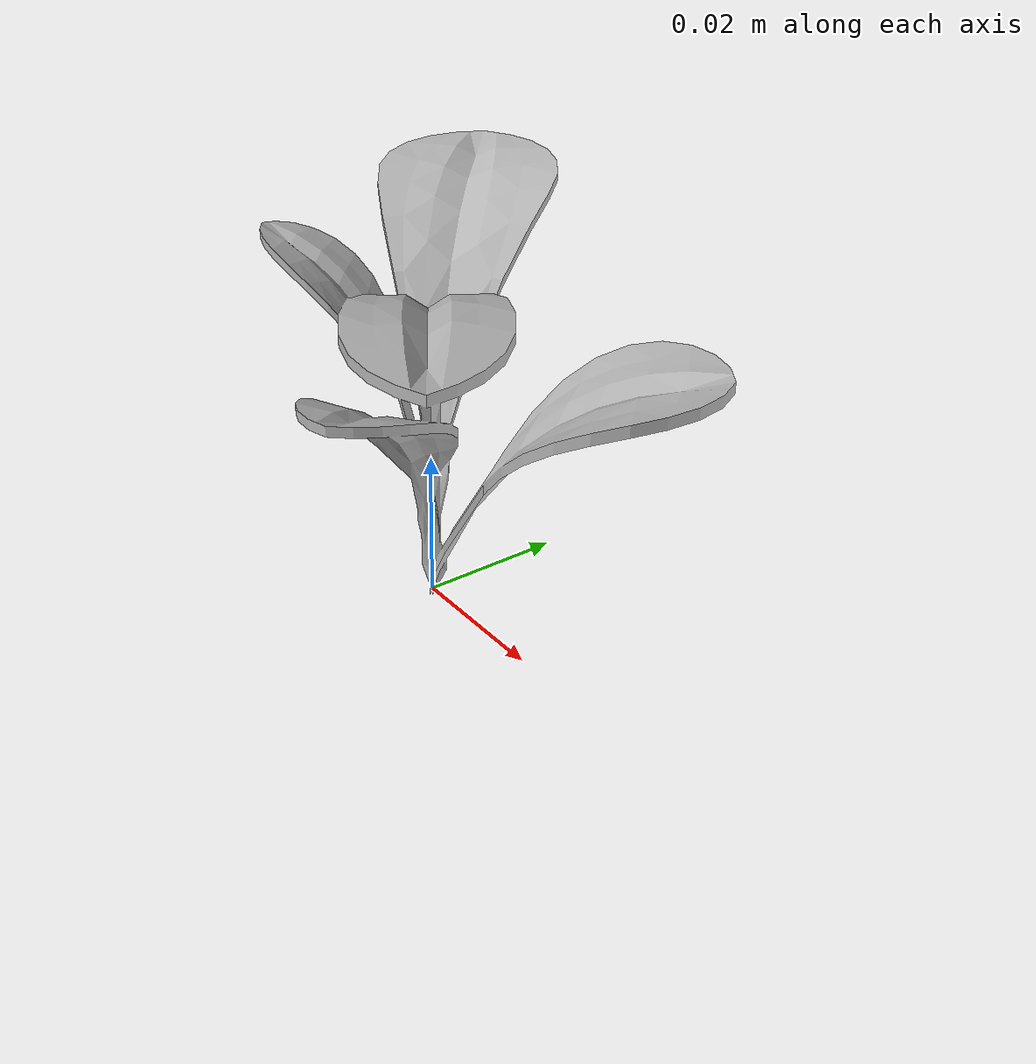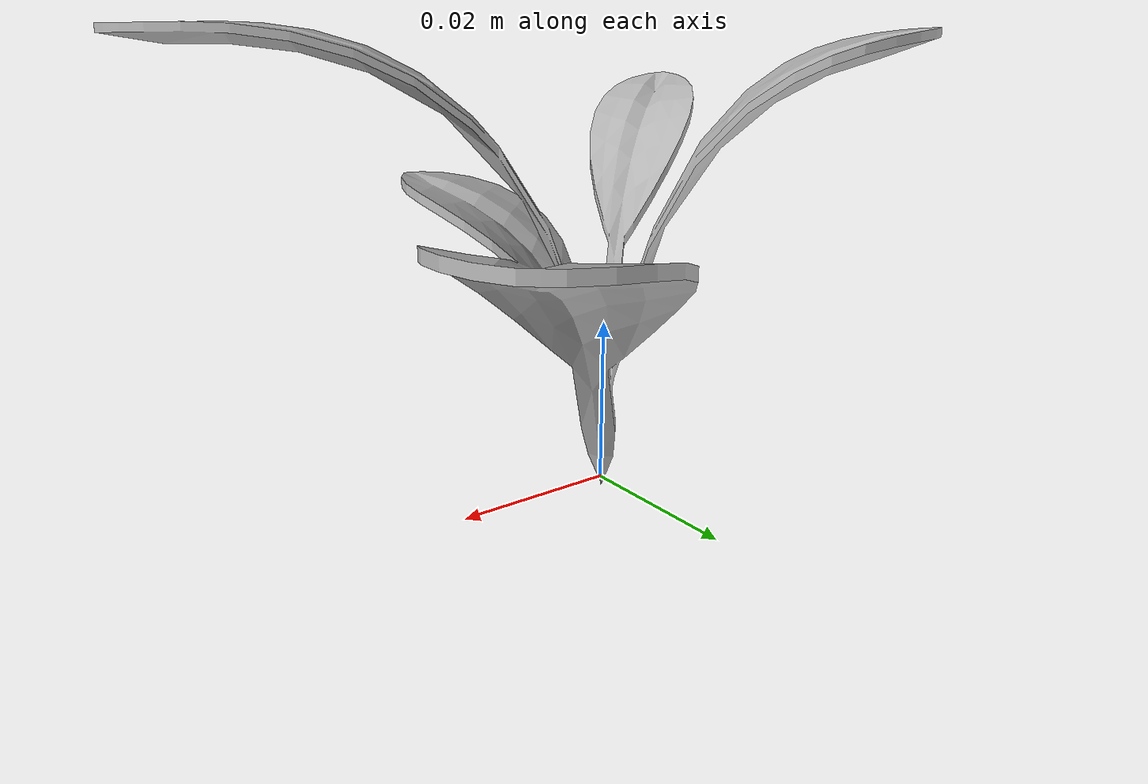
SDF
<sdf version="1.6">
  <model name="sugar_beet_9">
    <static>true</static>
    <link name="body">
      <visual name="visual">
        <geometry>
          <mesh>
            <uri>file:///sugar_beet_9/media/sugar_beet.dae</uri>
          </mesh>
        </geometry>
      </visual>
    </link>
  </model>
</sdf>
